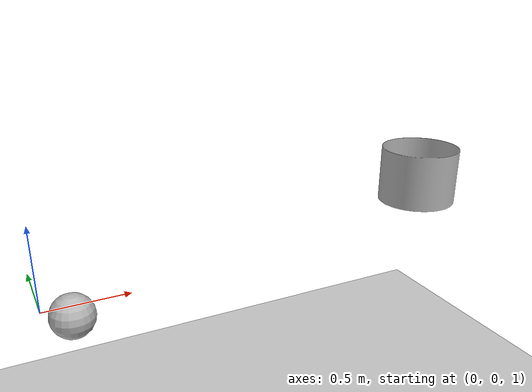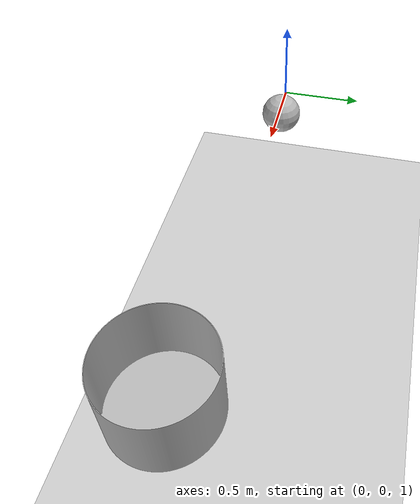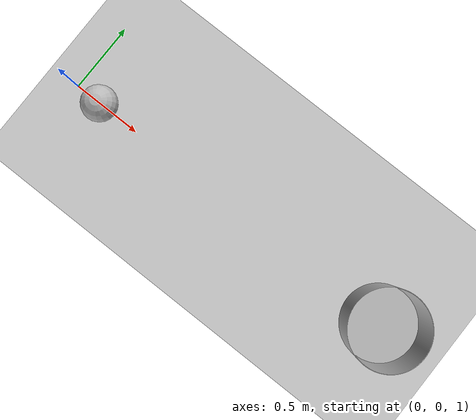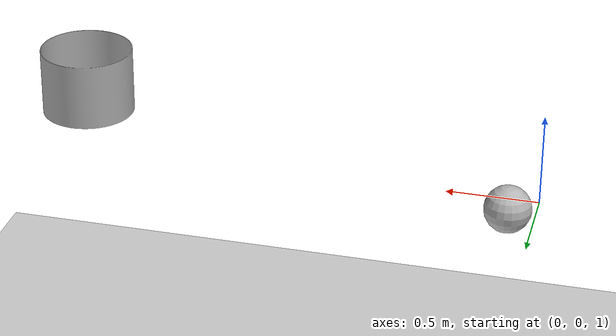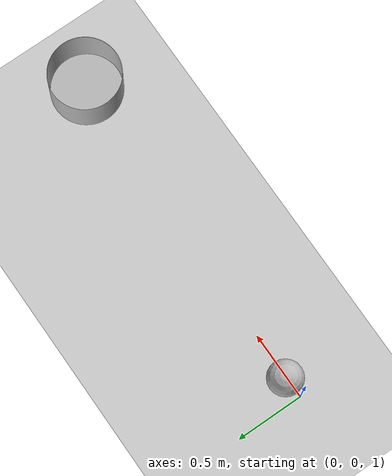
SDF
<?xml version="1.0" ?>
<sdf version="1.5">
  <world name="default">
    <!-- A global light source -->
    <include>
      <uri>model://sun</uri>
    </include>
    <!-- A ground plane -->
    <include>
      <uri>model://ground_plane</uri>
    </include>
    <include>
      <uri>model://models/hoop</uri>
      <static>1</static>
      <pose frame=''>2.5 0 1.24 0 0 0</pose>
    </include>
    <include>
      <uri>model://models/ball</uri>
      <pose frame=''>0.165 0 0.94 0 0 0</pose>
    </include>
  </world>
</sdf>

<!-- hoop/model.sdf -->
<sdf version='1.6'>
  <model name='hoop'>
    <link name='hoop_link'>
      <inertial>
        <mass>1</mass>
        <inertia>
          <ixx>0.145833</ixx>
          <ixy>0</ixy>
          <ixz>0</ixz>
          <iyy>0.145833</iyy>
          <iyz>0</iyz>
          <izz>0.125</izz>
        </inertia>
        <pose frame=''>0 0 0.27 0 0 0</pose>
      </inertial>
      <self_collide>0</self_collide>
      <kinematic>0</kinematic>
      <gravity>1</gravity>
      <visual name='visual'>
        <geometry>
          <mesh>
            <uri>model://meshes/visual/hoop.stl</uri>
          </mesh>
        </geometry>
        <pose frame=''>0 0 0 0 0 0</pose>
        <material name="grey"/>
      </visual>
      <collision name='collision'>
        <geometry>
          <mesh>
            <uri>model://meshes/visual/hoop.stl</uri>
          </mesh>
        </geometry>
        <pose frame=''>0 0 0 0 -0 0</pose>
      </collision>
    </link>
    <static>0</static>
    <allow_auto_disable>1</allow_auto_disable>
  </model>
</sdf>

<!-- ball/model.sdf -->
<sdf version="1.5">
  <model name="basketball">
    <static>false</static>
    <link name="ball">
      <inertial>
        <mass>0.25</mass>
        <!-- inertia based on solid sphere 2/5 mr^2 -->
        <inertia>
          <ixx>0.00169</ixx>
          <iyy>0.00169</iyy>
          <izz>0.00169</izz>
          <ixy>0</ixy>
          <ixz>0</ixz>
          <iyz>0</iyz>
        </inertia>
      </inertial>
      <visual name="visual">
        <geometry>
          <sphere>
            <radius>0.13</radius>
          </sphere>
        </geometry>
      </visual>
      <collision name="collision">
        <geometry>
          <sphere>
            <radius>0.13</radius>
          </sphere>
        </geometry>
        <surface>
          <friction>
            <ode>
              <mu>1e15</mu>
              <mu2>1e15</mu2>
            </ode>
          </friction>
          <bounce>
            <restitution_coefficient>0.01</restitution_coefficient>
            <threshold>0.01</threshold>
          </bounce>
          <contact>
            <ode>
              <kp>1e9</kp>
              <kd>1</kd>
              <max_vel>0.1</max_vel>
              <min_depth>0.0001</min_depth>
            </ode>
          </contact>
        </surface>
      </collision>
    </link>
  </model>
</sdf>
